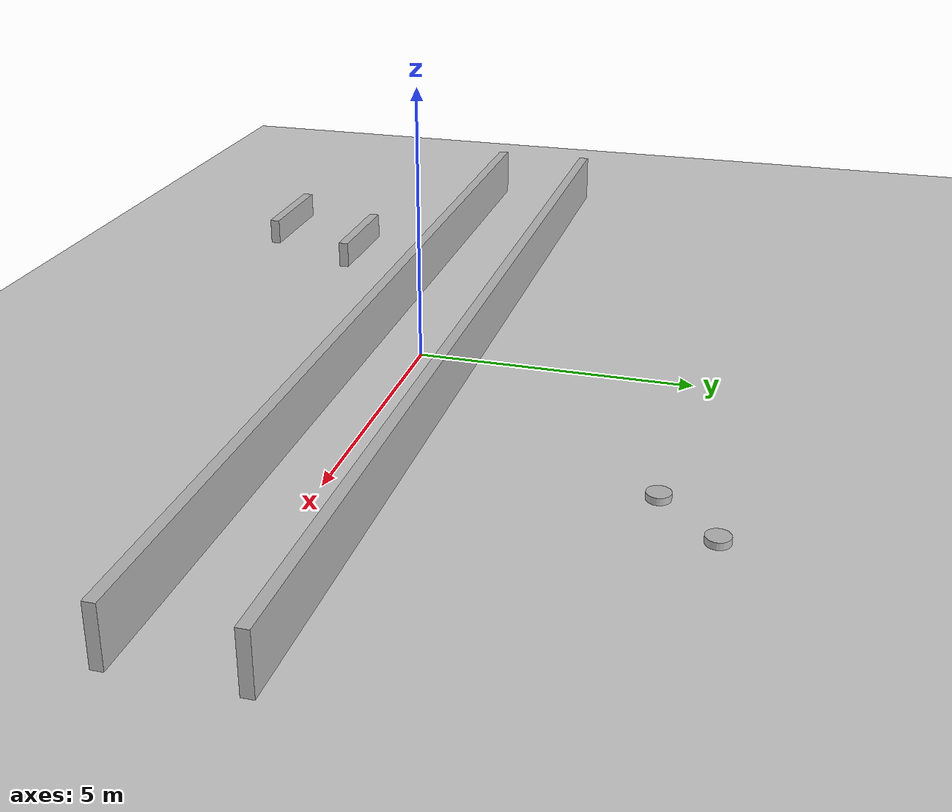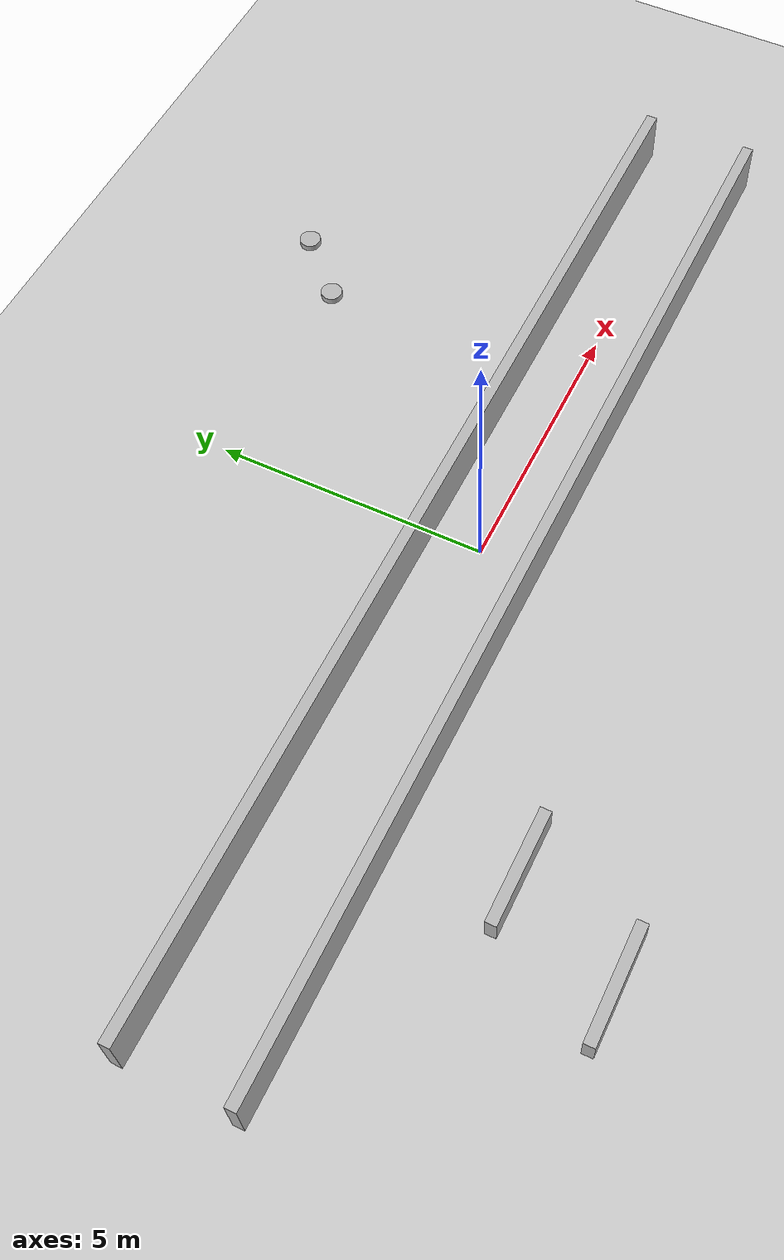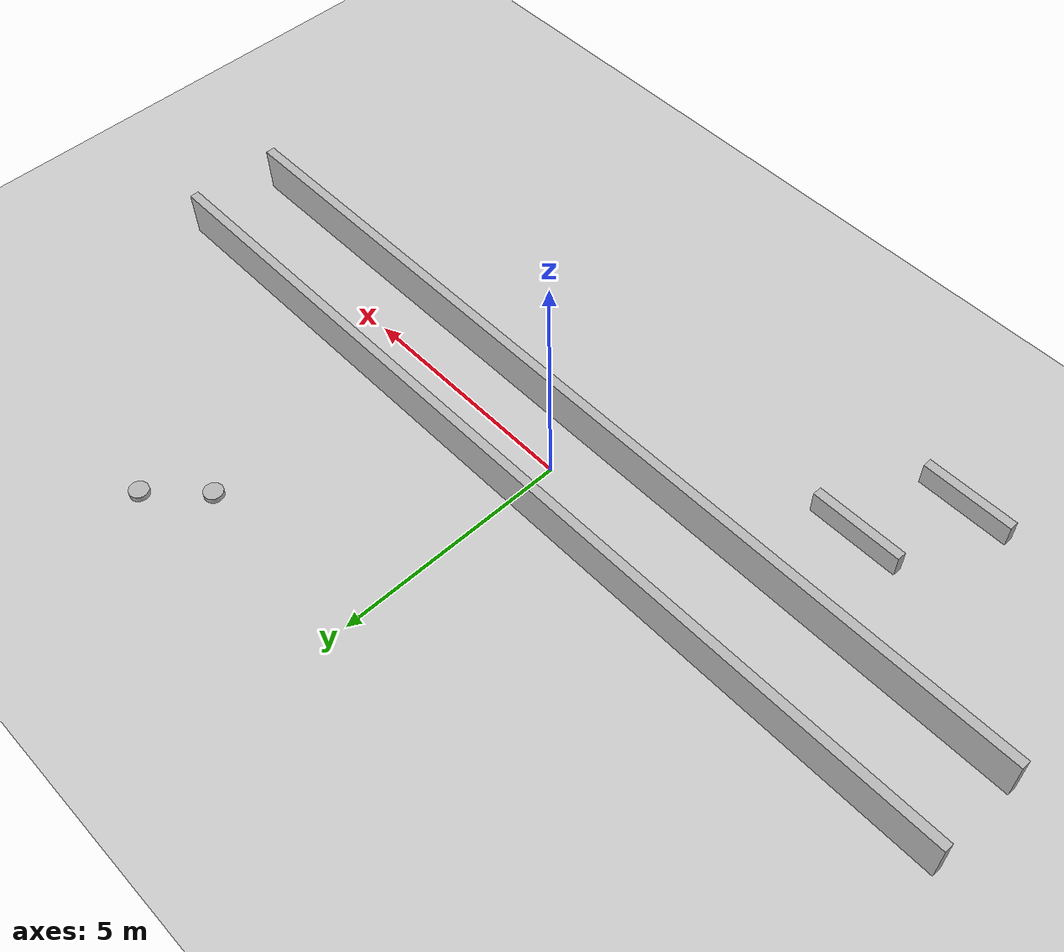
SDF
<sdf version="1.6">
 <world name="entorno_slam_completo">
  <include><uri>model://sun</uri></include>
  <include><uri>model://ground_plane</uri></include>
  <model name="pasillo">
   <link name="wall_left">
    <pose>0 1 0.5 0 0 0</pose>
    <collision name="collision"><geometry><box><size>20 0.2 1</size></box></geometry></collision>
    <visual name="visual"><geometry><box><size>20 0.2 1</size></box></geometry></visual>
   </link>
   <link name="wall_right">
    <pose>0 -1 0.5 0 0 0</pose>
    <collision name="collision"><geometry><box><size>20 0.2 1</size></box></geometry></collision>
    <visual name="visual"><geometry><box><size>20 0.2 1</size></box></geometry></visual>
   </link>
  </model>
  <model name="cono_bajo">
   <pose>4 5 0 0 0 0</pose>
   <link name="link">
    <collision name="collision">
     <geometry><cylinder><radius>0.2</radius><length>0.2</length></cylinder></geometry>
    </collision>
    <visual name="visual">
     <geometry><cylinder><radius>0.2</radius><length>0.2</length></cylinder></geometry>
    </visual>
   </link>
  </model>
  <model name="cono_bajo_2">
   <pose>5 6 0 0 0 0</pose>
   <link name="link">
    <collision name="collision">
     <geometry><cylinder><radius>0.2</radius><length>0.2</length></cylinder></geometry>
    </collision>
    <visual name="visual">
     <geometry><cylinder><radius>0.2</radius><length>0.2</length></cylinder></geometry>
    </visual>
   </link>
  </model>
  <model name="pared_aislada_1">
   <pose>-5 -3 0 0 0 0</pose>
   <link name="link">
    <collision name="collision"><geometry><box><size>2 0.2 1</size></box></geometry></collision>
    <visual name="visual"><geometry><box><size>2 0.2 1</size></box></geometry></visual>
   </link>
  </model>
  <model name="pared_aislada_2">
   <pose>-6 -5 0 0 0 0</pose>
   <link name="link">
    <collision name="collision"><geometry><box><size>2 0.2 1</size></box></geometry></collision>
    <visual name="visual"><geometry><box><size>2 0.2 1</size></box></geometry></visual>
   </link>
  </model>
 </world>
</sdf>
